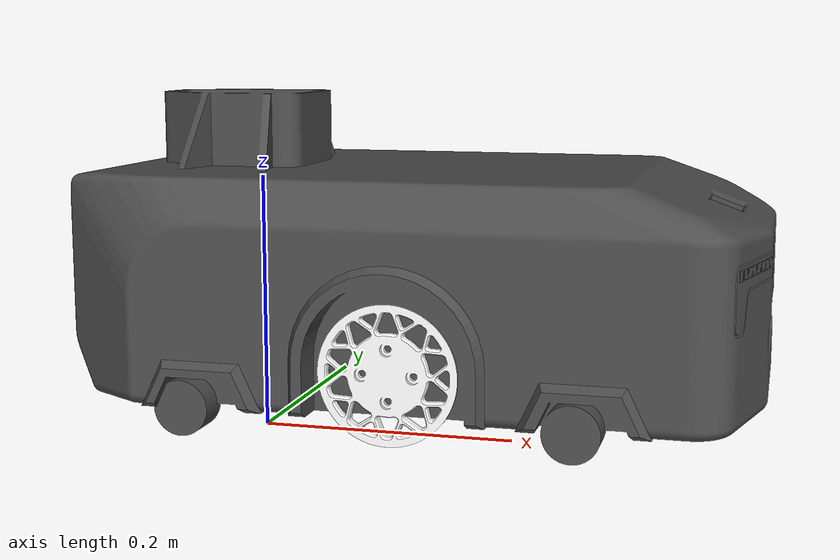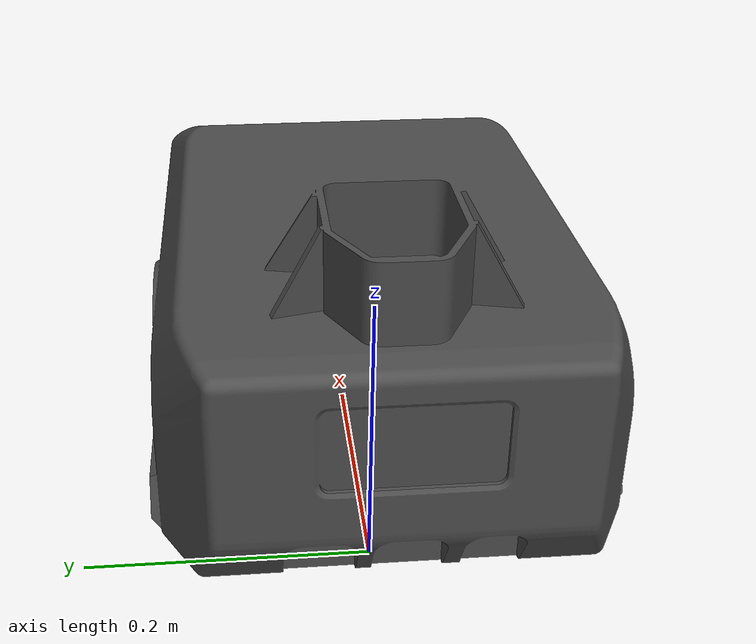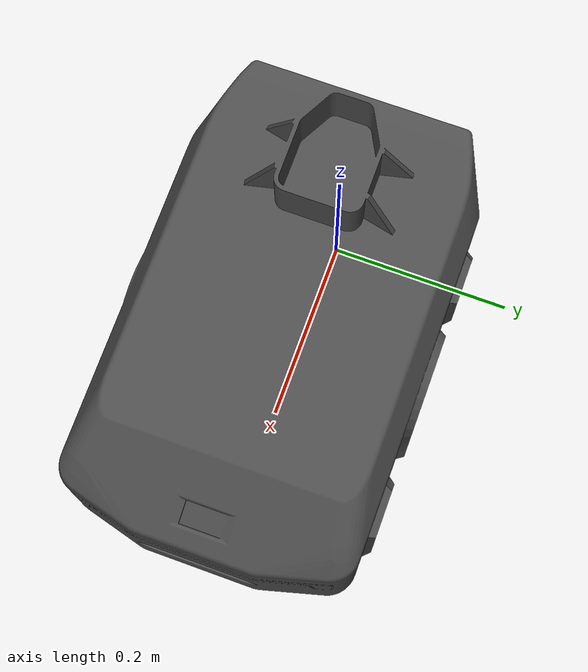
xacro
<?xml version="1.0"?>
<robot xmlns:xacro="http://www.ros.org/wiki/xacro" >

    <xacro:include filename="$(find robolaunch_cloudy_description)/urdf/inertial_macros.xacro"/>
    <xacro:include filename="$(find robolaunch_cloudy_description)/sensors/generic_laser_cloudy_v1.xacro" />
    <xacro:include filename="$(find robolaunch_cloudy_description)/urdf/robots/cloudy_v1_properties.urdf.xacro" />
    <xacro:include filename="$(find robolaunch_cloudy_description)/sensors/depth_sensor_cloudy_v1.xacro" />
    <xacro:property name="depth_sensor_pose">
        <origin xyz="0.4 0 0.05" rpy="0 0 0"/>
    </xacro:property>

   <xacro:property name="scale_ratio" value="0.0015" />
   <link name="base_footprint"/>

    <material name="white">
        <color rgba="1 1 1 1" />
    </material>

    <material name="orange">
        <color rgba="1 0.3 0.1 1"/>
    </material>

    <material name="blue">
        <color rgba="0.2 0.2 1 1"/>
    </material>

    <material name="black">
        <color rgba="0 0 0 1"/>
    </material>
  <material name="gray">
        <color rgba="0.3 0.3 0.3 1"/>
    </material>

    <!-- BASE LINK -->

    <link name="base_link">

    </link>

    <joint name="base_to_footprint" type="fixed">
      <parent link="base_footprint"/>
      <child link="base_link"/>
      <origin xyz="0 0 0.035" rpy="0 0 0"/>
    </joint>

    <!-- CHASSIS LINK -->

    <joint name="chassis_joint" type="fixed">
        <parent link="base_link"/>
        <child link="chassis"/>
        <origin xyz="-0.1 0 0"/>
    </joint>

    <link name="chassis">
        <visual>
            <origin xyz="0 0.15 0" rpy="1.57 0 0"/>
            <geometry>
                <mesh scale="${scale_ratio} ${scale_ratio} ${scale_ratio}" filename="file://$(find robolaunch_cloudy_description)/urdf/meshes/body.stl"/>
            </geometry>
            <material name="gray"/>
        </visual>
        <collision>
            <origin xyz="0.25 0 0.075"/>
            <geometry>
                <box size="0.5 0.3 0.15"/>
            </geometry>
        </collision>
        <xacro:inertial_box mass="0.5" x="0.3" y="0.3" z="0.15">
            <origin xyz="0.15 0 0.075" rpy="0 0 0"/>
        </xacro:inertial_box>
    </link>
    <gazebo reference="chassis">
    <material>Gazebo/DarkGrey</material>
      <mu1>0.2</mu1>
      <mu2>0.2</mu2>

    </gazebo>

    <!-- LEFT WHEEL LINK -->

    <joint name="left_wheel_joint" type="continuous">
        <parent link="base_link"/>
        <child link="left_wheel"/>
        <origin xyz="0.145 0.14 0.048" rpy="-${pi/2} 0 0" />
        <axis xyz="0 0 1"/>
    </joint>

    <link name="right_wheel">
        <visual>
            <geometry>
                <mesh scale="${scale_ratio} ${scale_ratio} ${scale_ratio}" filename="file://$(find robolaunch_cloudy_description)/urdf/meshes/wheel.stl" />
            </geometry>
            <material name="white"/>
            <origin xyz="-0.049 -0.049 0" rpy="0 ${pi/2} 0" />

        </visual>
        <collision>
            <geometry>
                <cylinder radius="0.05" length="0.04"/>
            </geometry>
        </collision>
        <xacro:inertial_cylinder mass="0.1" length="0.04" radius="0.05">
            <origin xyz="0 0 0" rpy="0 0 0"/>
        </xacro:inertial_cylinder>
    </link>
    <gazebo reference="left_wheel">
    <material>Gazebo/White</material>
    </gazebo>
    <!-- RIGHT WHEEL LINK -->

    <joint name="right_wheel_joint" type="continuous">
        <parent link="base_link"/>
        <child link="right_wheel"/>
        <origin xyz="0.145 -0.14 0.048" rpy="-${pi/2} 0 0" />
        <axis xyz="0 0 1"/>
    </joint>

    <link name="left_wheel">
        <visual>
            <geometry>
                <mesh scale="${scale_ratio} ${scale_ratio} ${scale_ratio}" filename="file://$(find robolaunch_cloudy_description)/urdf/meshes/wheel.stl" />
            </geometry>
            <origin xyz="-0.049 -0.049 0" rpy="0 ${pi/2} 0" />
            <material name="white"/>
        </visual>
        <collision>
            <geometry>
                <cylinder radius="0.05" length="0.04"/>
            </geometry>
        </collision>
        <xacro:inertial_cylinder mass="0.1" length="0.04" radius="0.05">
            <origin xyz="0 0 0" rpy="0 0 0"/>
        </xacro:inertial_cylinder>
    </link>
    <gazebo reference="right_wheel">
    <material>Gazebo/White</material>
    </gazebo>

    <!-- CASTER WHEEL LINK -->

</robot>
